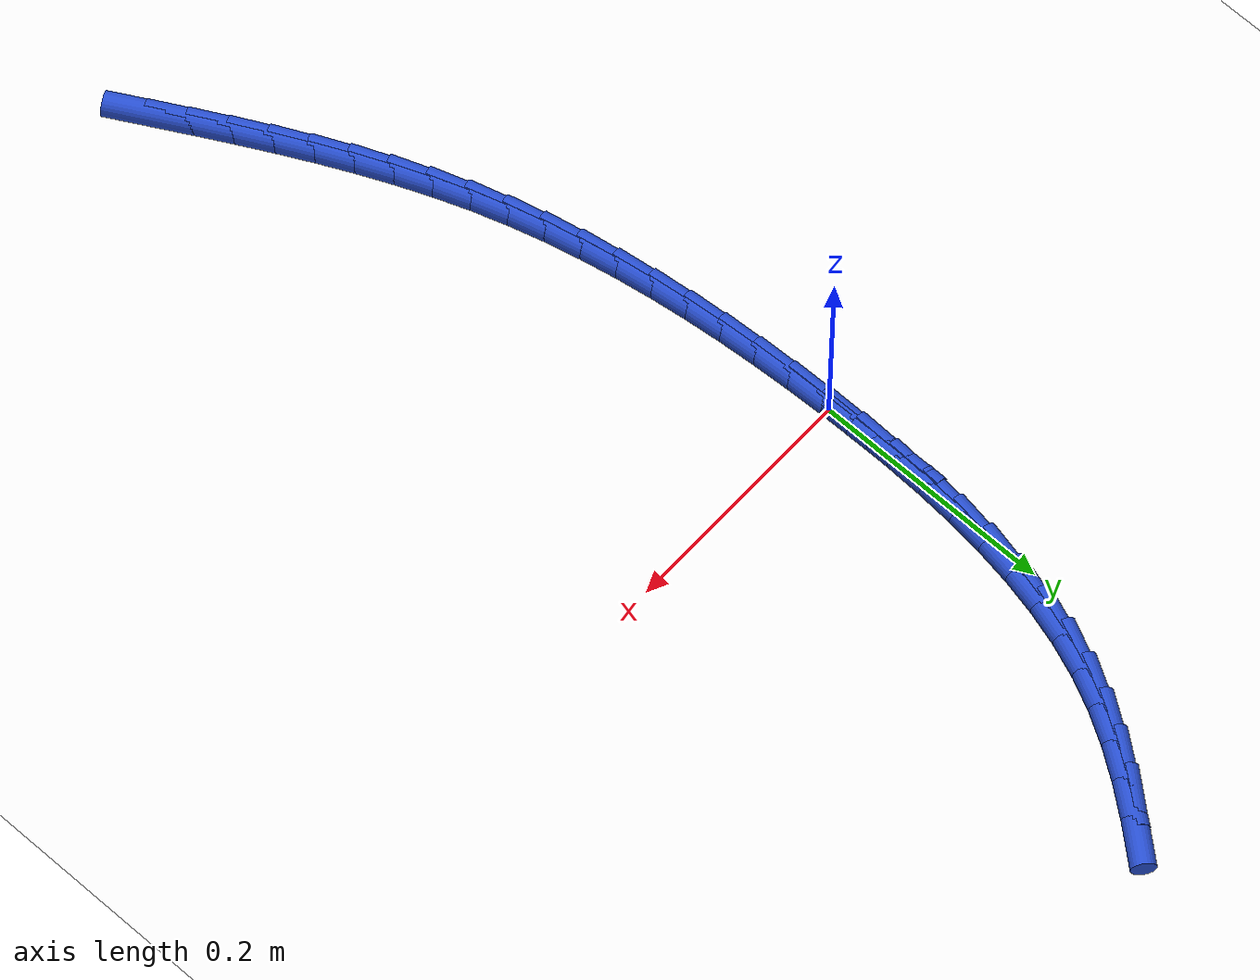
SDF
<sdf version="1.6">
 <world name="default">
  <model name="ground_plane">
   <static>1</static>
   <link name="link">
    <collision name="collision">
     <geometry><plane><normal>0 0 1</normal><size>100 100</size></plane></geometry>
     <surface><friction><ode><mu>100</mu><mu2>50</mu2></ode></friction></surface>
    </collision>
    <visual name="visual">
     <cast_shadows>0</cast_shadows>
     <geometry><plane><normal>0 0 1</normal><size>100 100</size></plane></geometry>
     <material>
      <script><uri>file://media/materials/scripts/gazebo.material</uri><name>Gazebo/WhiteGlow</name></script>
     </material>
    </visual>
   </link>
  </model>
  <model name="line">
   <link name="link_0">
    <pose>1.734723475976807e-17 -4.163336342344337e-17 0.01 0 1.57 -1.55265950752404</pose>
    <collision name="collision">
     <geometry><cylinder><radius>0.01</radius><length>0.08</length></cylinder></geometry>
    </collision>
    <visual name="visual">
     <material>
      <script><name>Gazebo/Blue</name><uri>file://media/materials/scripts/gazebo.material</uri></script>
     </material>
     <geometry><cylinder><radius>0.01</radius><length>0.08</length></cylinder></geometry>
    </visual>
   </link>
   <link name="link_1">
    <pose>-0.0005859457003438465 0.03230342886310348 0.01 0 1.57 1.5658201409551833</pose>
    <collision name="collision">
     <geometry><cylinder><radius>0.01</radius><length>0.08</length></cylinder></geometry>
    </collision>
    <visual name="visual">
     <material>
      <script><name>Gazebo/Blue</name><uri>file://media/materials/scripts/gazebo.material</uri></script>
     </material>
     <geometry><cylinder><radius>0.01</radius><length>0.08</length></cylinder></geometry>
    </visual>
   </link>
   <link name="link_2">
    <pose>-0.0004249000776131107 0.06466642707548614 0.01 0 1.57 1.5367646593894932</pose>
    <collision name="collision">
     <geometry><cylinder><radius>0.01</radius><length>0.08</length></cylinder></geometry>
    </collision>
    <visual name="visual">
     <material>
      <script><name>Gazebo/Blue</name><uri>file://media/materials/scripts/gazebo.material</uri></script>
     </material>
     <geometry><cylinder><radius>0.01</radius><length>0.08</length></cylinder></geometry>
    </visual>
   </link>
   <link name="link_3">
    <pose>0.0006735896395232883 0.09693242208971113 0.01 0 1.57 1.501360544168147</pose>
    <collision name="collision">
     <geometry><cylinder><radius>0.01</radius><length>0.08</length></cylinder></geometry>
    </collision>
    <visual name="visual">
     <material>
      <script><name>Gazebo/Blue</name><uri>file://media/materials/scripts/gazebo.material</uri></script>
     </material>
     <geometry><cylinder><radius>0.01</radius><length>0.08</length></cylinder></geometry>
    </visual>
   </link>
   <link name="link_4">
    <pose>0.0028999762223964145 0.12894484135834167 0.01 0 1.57 1.4590960805574682</pose>
    <collision name="collision">
     <geometry><cylinder><radius>0.01</radius><length>0.08</length></cylinder></geometry>
    </collision>
    <visual name="visual">
     <material>
      <script><name>Gazebo/Blue</name><uri>file://media/materials/scripts/gazebo.material</uri></script>
     </material>
     <geometry><cylinder><radius>0.01</radius><length>0.08</length></cylinder></geometry>
    </visual>
   </link>
   <link name="link_5">
    <pose>0.006444712442337328 0.1605471123339411 0.01 0 1.57 1.409382301169204</pose>
    <collision name="collision">
     <geometry><cylinder><radius>0.01</radius><length>0.08</length></cylinder></geometry>
    </collision>
    <visual name="visual">
     <material>
      <script><name>Gazebo/Blue</name><uri>file://media/materials/scripts/gazebo.material</uri></script>
     </material>
     <geometry><cylinder><radius>0.01</radius><length>0.08</length></cylinder></geometry>
    </visual>
   </link>
   <link name="link_6">
    <pose>0.0114982510706771 0.19158266246907257 0.01 0 1.57 1.3516012810251783</pose>
    <collision name="collision">
     <geometry><cylinder><radius>0.01</radius><length>0.08</length></cylinder></geometry>
    </collision>
    <visual name="visual">
     <material>
      <script><name>Gazebo/Blue</name><uri>file://media/materials/scripts/gazebo.material</uri></script>
     </material>
     <geometry><cylinder><radius>0.01</radius><length>0.08</length></cylinder></geometry>
    </visual>
   </link>
   <link name="link_7">
    <pose>0.018251044878746788 0.22189491921629934 0.01 0 1.57 1.2851853566908167</pose>
    <collision name="collision">
     <geometry><cylinder><radius>0.01</radius><length>0.08</length></cylinder></geometry>
    </collision>
    <visual name="visual">
     <material>
      <script><name>Gazebo/Blue</name><uri>file://media/materials/scripts/gazebo.material</uri></script>
     </material>
     <geometry><cylinder><radius>0.01</radius><length>0.08</length></cylinder></geometry>
    </visual>
   </link>
   <link name="link_8">
    <pose>0.02689354663787745 0.2513273100281847 0.01 0 1.57 1.2097373404770093</pose>
    <collision name="collision">
     <geometry><cylinder><radius>0.01</radius><length>0.08</length></cylinder></geometry>
    </collision>
    <visual name="visual">
     <material>
      <script><name>Gazebo/Blue</name><uri>file://media/materials/scripts/gazebo.material</uri></script>
     </material>
     <geometry><cylinder><radius>0.01</radius><length>0.08</length></cylinder></geometry>
    </visual>
   </link>
   <link name="link_9">
    <pose>0.03761620911940015 0.2797232623572918 0.01 0 1.57 1.1255262804051775</pose>
    <collision name="collision">
     <geometry><cylinder><radius>0.01</radius><length>0.08</length></cylinder></geometry>
    </collision>
    <visual name="visual">
     <material>
      <script><name>Gazebo/Blue</name><uri>file://media/materials/scripts/gazebo.material</uri></script>
     </material>
     <geometry><cylinder><radius>0.01</radius><length>0.08</length></cylinder></geometry>
    </visual>
   </link>
   <link name="link_10">
    <pose>0.05060117527124335 0.3069320277369296 0.01 0 1.57 1.042751113733992</pose>
    <collision name="collision">
     <geometry><cylinder><radius>0.01</radius><length>0.08</length></cylinder></geometry>
    </collision>
    <visual name="visual">
     <material>
      <script><name>Gazebo/Blue</name><uri>file://media/materials/scripts/gazebo.material</uri></script>
     </material>
     <geometry><cylinder><radius>0.01</radius><length>0.08</length></cylinder></geometry>
    </visual>
   </link>
   <link name="link_11">
    <pose>0.06578988234074315 0.3329715603753368 0.01 0 1.57 0.9733938336535853</pose>
    <collision name="collision">
     <geometry><cylinder><radius>0.01</radius><length>0.08</length></cylinder></geometry>
    </collision>
    <visual name="visual">
     <material>
      <script><name>Gazebo/Blue</name><uri>file://media/materials/scripts/gazebo.material</uri></script>
     </material>
     <geometry><cylinder><radius>0.01</radius><length>0.08</length></cylinder></geometry>
    </visual>
   </link>
   <link name="link_12">
    <pose>0.0828517972117375 0.3580504295252259 0.01 0 1.57 0.9184853497093782</pose>
    <collision name="collision">
     <geometry><cylinder><radius>0.01</radius><length>0.08</length></cylinder></geometry>
    </collision>
    <visual name="visual">
     <material>
      <script><name>Gazebo/Blue</name><uri>file://media/materials/scripts/gazebo.material</uri></script>
     </material>
     <geometry><cylinder><radius>0.01</radius><length>0.08</length></cylinder></geometry>
    </visual>
   </link>
   <link name="link_13">
    <pose>0.10144179476598855 0.3823874314915847 0.01 0 1.57 0.8778447194304946</pose>
    <collision name="collision">
     <geometry><cylinder><radius>0.01</radius><length>0.08</length></cylinder></geometry>
    </collision>
    <visual name="visual">
     <material>
      <script><name>Gazebo/Blue</name><uri>file://media/materials/scripts/gazebo.material</uri></script>
     </material>
     <geometry><cylinder><radius>0.01</radius><length>0.08</length></cylinder></geometry>
    </visual>
   </link>
   <link name="link_192">
    <pose>0.15668954155026196 -0.532836987367235 0.01 0 1.57 -1.0638846542035345</pose>
    <collision name="collision">
     <geometry><cylinder><radius>0.01</radius><length>0.08</length></cylinder></geometry>
    </collision>
    <visual name="visual">
     <material>
      <script><name>Gazebo/Blue</name><uri>file://media/materials/scripts/gazebo.material</uri></script>
     </material>
     <geometry><cylinder><radius>0.01</radius><length>0.08</length></cylinder></geometry>
    </visual>
   </link>
   <link name="link_193">
    <pose>0.1412600454134768 -0.5050516674738866 0.01 0 1.57 -1.0719120466536682</pose>
    <collision name="collision">
     <geometry><cylinder><radius>0.01</radius><length>0.08</length></cylinder></geometry>
    </collision>
    <visual name="visual">
     <material>
      <script><name>Gazebo/Blue</name><uri>file://media/materials/scripts/gazebo.material</uri></script>
     </material>
     <geometry><cylinder><radius>0.01</radius><length>0.08</length></cylinder></geometry>
    </visual>
   </link>
   <link name="link_194">
    <pose>0.1261346512351494 -0.4772912479871851 0.01 0 1.57 -1.0844625552511307</pose>
    <collision name="collision">
     <geometry><cylinder><radius>0.01</radius><length>0.08</length></cylinder></geometry>
    </collision>
    <visual name="visual">
     <material>
      <script><name>Gazebo/Blue</name><uri>file://media/materials/scripts/gazebo.material</uri></script>
     </material>
     <geometry><cylinder><radius>0.01</radius><length>0.08</length></cylinder></geometry>
    </visual>
   </link>
   <link name="link_195">
    <pose>0.11144007721692843 -0.4494968342150747 0.01 0 1.57 -1.10161652585506</pose>
    <collision name="collision">
     <geometry><cylinder><radius>0.01</radius><length>0.08</length></cylinder></geometry>
    </collision>
    <visual name="visual">
     <material>
      <script><name>Gazebo/Blue</name><uri>file://media/materials/scripts/gazebo.material</uri></script>
     </material>
     <geometry><cylinder><radius>0.01</radius><length>0.08</length></cylinder></geometry>
    </visual>
   </link>
   <link name="link_196">
    <pose>0.09730304156046232 -0.421609531465499 0.01 0 1.57 -1.1234497721833154</pose>
    <collision name="collision">
     <geometry><cylinder><radius>0.01</radius><length>0.08</length></cylinder></geometry>
    </collision>
    <visual name="visual">
     <material>
      <script><name>Gazebo/Blue</name><uri>file://media/materials/scripts/gazebo.material</uri></script>
     </material>
     <geometry><cylinder><radius>0.01</radius><length>0.08</length></cylinder></geometry>
    </visual>
   </link>
   <link name="link_197">
    <pose>0.08385026246740054 -0.3935704450464041 0.01 0 1.57 -1.150022326466305</pose>
    <collision name="collision">
     <geometry><cylinder><radius>0.01</radius><length>0.08</length></cylinder></geometry>
    </collision>
    <visual name="visual">
     <material>
      <script><name>Gazebo/Blue</name><uri>file://media/materials/scripts/gazebo.material</uri></script>
     </material>
     <geometry><cylinder><radius>0.01</radius><length>0.08</length></cylinder></geometry>
    </visual>
   </link>
   <link name="link_198">
    <pose>0.0712084581393915 -0.3653206802657335 0.01 0 1.57 -1.1813634561172248</pose>
    <collision name="collision">
     <geometry><cylinder><radius>0.01</radius><length>0.08</length></cylinder></geometry>
    </collision>
    <visual name="visual">
     <material>
      <script><name>Gazebo/Blue</name><uri>file://media/materials/scripts/gazebo.material</uri></script>
     </material>
     <geometry><cylinder><radius>0.01</radius><length>0.08</length></cylinder></geometry>
    </visual>
   </link>
   <link name="link_199">
    <pose>0.05950434677808392 -0.33680134243143167 0.01 0 1.57 -1.2174531129744877</pose>
    <collision name="collision">
     <geometry><cylinder><radius>0.01</radius><length>0.08</length></cylinder></geometry>
    </collision>
    <visual name="visual">
     <material>
      <script><name>Gazebo/Blue</name><uri>file://media/materials/scripts/gazebo.material</uri></script>
     </material>
     <geometry><cylinder><radius>0.01</radius><length>0.08</length></cylinder></geometry>
    </visual>
   </link>
   <link name="link_200">
    <pose>0.04886464658512657 -0.307953536851443 0.01 0 1.57 -1.2580108127686365</pose>
    <collision name="collision">
     <geometry><cylinder><radius>0.01</radius><length>0.08</length></cylinder></geometry>
    </collision>
    <visual name="visual">
     <material>
      <script><name>Gazebo/Blue</name><uri>file://media/materials/scripts/gazebo.material</uri></script>
     </material>
     <geometry><cylinder><radius>0.01</radius><length>0.08</length></cylinder></geometry>
    </visual>
   </link>
   <link name="link_201">
    <pose>0.0394106483367954 -0.278720538257995 0.01 0 1.57 -1.299336944214614</pose>
    <collision name="collision">
     <geometry><cylinder><radius>0.01</radius><length>0.08</length></cylinder></geometry>
    </collision>
    <visual name="visual">
     <material>
      <script><name>Gazebo/Blue</name><uri>file://media/materials/scripts/gazebo.material</uri></script>
     </material>
     <geometry><cylinder><radius>0.01</radius><length>0.08</length></cylinder></geometry>
    </visual>
   </link>
   <link name="link_202">
    <pose>0.031162484733604723 -0.24908605580127724 0.01 0 1.57 -1.3381585851317872</pose>
    <collision name="collision">
     <geometry><cylinder><radius>0.01</radius><length>0.08</length></cylinder></geometry>
    </collision>
    <visual name="visual">
     <material>
      <script><name>Gazebo/Blue</name><uri>file://media/materials/scripts/gazebo.material</uri></script>
     </material>
     <geometry><cylinder><radius>0.01</radius><length>0.08</length></cylinder></geometry>
    </visual>
   </link>
   <link name="link_203">
    <pose>0.02405075914212453 -0.21906958486487296 0.01 0 1.57 -1.3742799403357588</pose>
    <collision name="collision">
     <geometry><cylinder><radius>0.01</radius><length>0.08</length></cylinder></geometry>
    </collision>
    <visual name="visual">
     <material>
      <script><name>Gazebo/Blue</name><uri>file://media/materials/scripts/gazebo.material</uri></script>
     </material>
     <geometry><cylinder><radius>0.01</radius><length>0.08</length></cylinder></geometry>
    </visual>
   </link>
   <link name="link_204">
    <pose>0.018002984129858776 -0.18869185627165294 0.01 0 1.57 -1.4076563734108145</pose>
    <collision name="collision">
     <geometry><cylinder><radius>0.01</radius><length>0.08</length></cylinder></geometry>
    </collision>
    <visual name="visual">
     <material>
      <script><name>Gazebo/Blue</name><uri>file://media/materials/scripts/gazebo.material</uri></script>
     </material>
     <geometry><cylinder><radius>0.01</radius><length>0.08</length></cylinder></geometry>
    </visual>
   </link>
   <link name="link_205">
    <pose>0.012946672264311598 -0.15797360084448847 0.01 0 1.57 -1.4382786886863166</pose>
    <collision name="collision">
     <geometry><cylinder><radius>0.01</radius><length>0.08</length></cylinder></geometry>
    </collision>
    <visual name="visual">
     <material>
      <script><name>Gazebo/Blue</name><uri>file://media/materials/scripts/gazebo.material</uri></script>
     </material>
     <geometry><cylinder><radius>0.01</radius><length>0.08</length></cylinder></geometry>
    </visual>
   </link>
   <link name="link_206">
    <pose>0.00880933611298717 -0.12693554940625107 0.01 0 1.57 -1.466165446117871</pose>
    <collision name="collision">
     <geometry><cylinder><radius>0.01</radius><length>0.08</length></cylinder></geometry>
    </collision>
    <visual name="visual">
     <material>
      <script><name>Gazebo/Blue</name><uri>file://media/materials/scripts/gazebo.material</uri></script>
     </material>
     <geometry><cylinder><radius>0.01</radius><length>0.08</length></cylinder></geometry>
    </visual>
   </link>
   <link name="link_207">
    <pose>0.005518488243389635 -0.09559843277981211 0.01 0 1.57 -1.4913557284137018</pose>
    <collision name="collision">
     <geometry><cylinder><radius>0.01</radius><length>0.08</length></cylinder></geometry>
    </collision>
    <visual name="visual">
     <material>
      <script><name>Gazebo/Blue</name><uri>file://media/materials/scripts/gazebo.material</uri></script>
     </material>
     <geometry><cylinder><radius>0.01</radius><length>0.08</length></cylinder></geometry>
    </visual>
   </link>
   <link name="link_208">
    <pose>0.0030016412230231635 -0.06398298178804303 0.01 0 1.57 -1.5139026738237922</pose>
    <collision name="collision">
     <geometry><cylinder><radius>0.01</radius><length>0.08</length></cylinder></geometry>
    </collision>
    <visual name="visual">
     <material>
      <script><name>Gazebo/Blue</name><uri>file://media/materials/scripts/gazebo.material</uri></script>
     </material>
     <geometry><cylinder><radius>0.01</radius><length>0.08</length></cylinder></geometry>
    </visual>
   </link>
   <link name="link_209">
    <pose>0.0011863076193918752 -0.03210992725381448 0.01 0 1.57 -1.5338679244861984</pose>
    <collision name="collision">
     <geometry><cylinder><radius>0.01</radius><length>0.08</length></cylinder></geometry>
    </collision>
    <visual name="visual">
     <material>
      <script><name>Gazebo/Blue</name><uri>file://media/materials/scripts/gazebo.material</uri></script>
     </material>
     <geometry><cylinder><radius>0.01</radius><length>0.08</length></cylinder></geometry>
    </visual>
   </link>
   <link name="link_210">
    <pose>2.7538735181131813e-17 -1.3877787807814457e-16 0.01 0 1.57 -1.5513170202080424</pose>
    <collision name="collision">
     <geometry><cylinder><radius>0.01</radius><length>0.08</length></cylinder></geometry>
    </collision>
    <visual name="visual">
     <material>
      <script><name>Gazebo/Blue</name><uri>file://media/materials/scripts/gazebo.material</uri></script>
     </material>
     <geometry><cylinder><radius>0.01</radius><length>0.08</length></cylinder></geometry>
    </visual>
   </link>
   <link name="link_211">
    <pose>-0.0006297690676483193 0.032326069150530795 0.01 0 1.57 -1.5663156890058445</pose>
    <collision name="collision">
     <geometry><cylinder><radius>0.01</radius><length>0.08</length></cylinder></geometry>
    </collision>
    <visual name="visual">
     <material>
      <script><name>Gazebo/Blue</name><uri>file://media/materials/scripts/gazebo.material</uri></script>
     </material>
     <geometry><cylinder><radius>0.01</radius><length>0.08</length></cylinder></geometry>
    </visual>
   </link>
   <link name="link_212">
    <pose>-0.0007754870160489747 0.06484754937490775 0.01 0 1.57 -1.55883827965802</pose>
    <collision name="collision">
     <geometry><cylinder><radius>0.01</radius><length>0.08</length></cylinder></geometry>
    </collision>
    <visual name="visual">
     <material>
      <script><name>Gazebo/Blue</name><uri>file://media/materials/scripts/gazebo.material</uri></script>
     </material>
     <geometry><cylinder><radius>0.01</radius><length>0.08</length></cylinder></geometry>
    </visual>
   </link>
  </model>
 </world>
</sdf>
